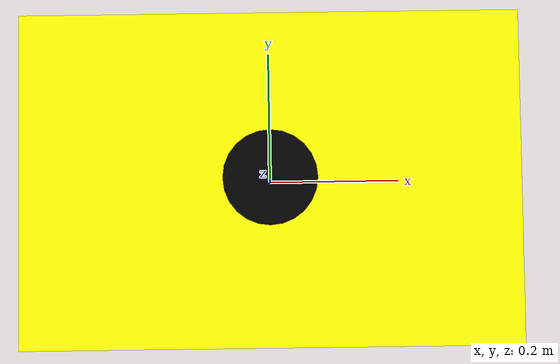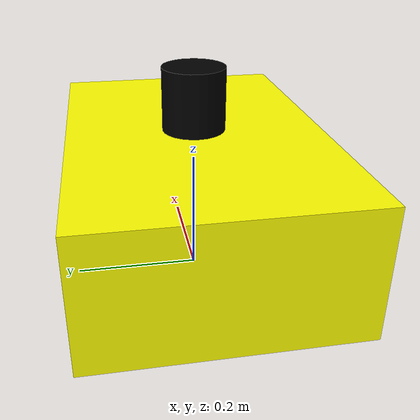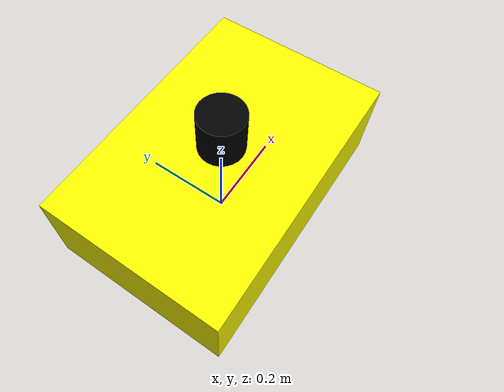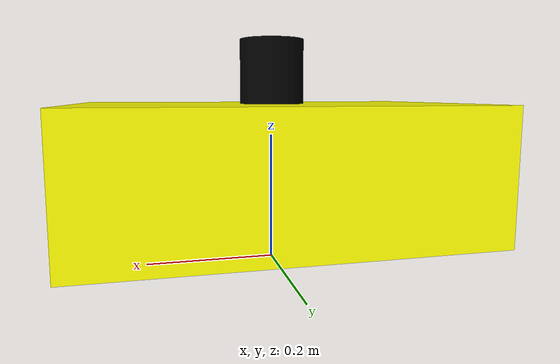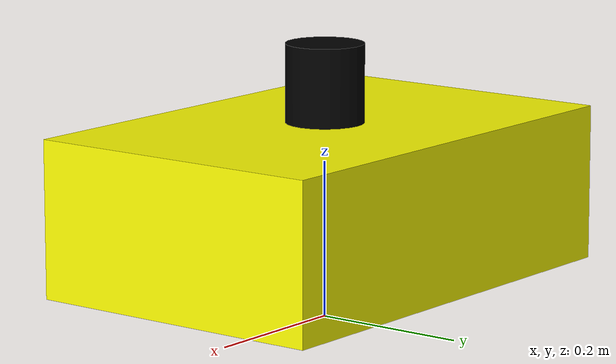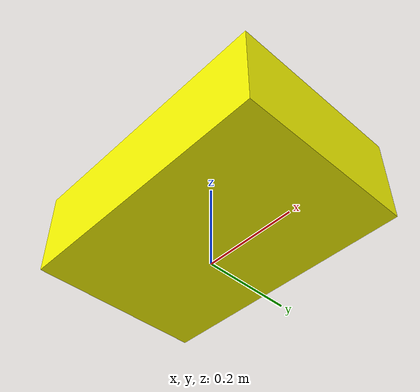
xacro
<?xml version="1.0"?>
<robot name="cavex_robot" xmlns:xacro="http://ros.org/wiki/xacro">
  <link name="base_footprint"/>
  <joint name="base_joint" type="fixed">
    <parent link="base_footprint"/>
    <child link="base_link"/>
    <origin xyz="0 0 0.15" rpy="0 0 0"/>
  </joint>

  <link name="base_link">
    <visual>
      <geometry><box size="0.6 0.4 0.2"/></geometry>
      <material name="yellow"><color rgba="1 1 0 1"/></material>
    </visual>
    <collision>
      <geometry><box size="0.6 0.4 0.2"/></geometry>
    </collision>
    <inertial>
      <mass value="15.0"/>
      <inertia ixx="0.1" ixy="0" ixz="0" iyy="0.1" iyz="0" izz="0.1"/>
    </inertial>
  </link>

  <!-- Lidar -->
  <link name="lidar_link">
    <visual>
      <geometry><cylinder radius="0.05" length="0.1"/></geometry>
      <material name="black"><color rgba="0 0 0 1"/></material>
    </visual>
  </link>
  <joint name="lidar_joint" type="fixed">
    <parent link="base_link"/>
    <child link="lidar_link"/>
    <origin xyz="0 0 0.15" rpy="0 0 0"/>
  </joint>

  <!-- Camera -->
  <link name="camera_link"/>
  <joint name="camera_joint" type="fixed">
    <parent link="base_link"/>
    <child link="camera_link"/>
    <origin xyz="0.3 0 0" rpy="0 0 0"/>
  </joint>

  <gazebo reference="lidar_link">
    <sensor type="gpu_lidar" name="lidar_sensor">
      <pose>0 0 0 0 0 0</pose>
      <visualize>false</visualize>
      <update_rate>10</update_rate>
      <topic>lidar/scan</topic>
      <gz_frame_id>lidar_link</gz_frame_id>
      <ray>
        <scan>
          <horizontal><samples>360</samples><resolution>1</resolution><min_angle>-3.14</min_angle><max_angle>3.14</max_angle></horizontal>
        </scan>
        <range><min>0.3</min><max>12.0</max></range>
      </ray>
    </sensor>
  </gazebo>

  <gazebo reference="camera_link">
    <sensor type="camera" name="camera_sensor">
      <update_rate>30.0</update_rate>
      <topic>camera/color</topic>
      <gz_frame_id>camera_link</gz_frame_id>
      <camera>
        <horizontal_fov>1.3962634</horizontal_fov>
        <image><width>800</width><height>800</height><format>R8G8B8</format></image>
        <clip><near>0.02</near><far>300</far></clip>
      </camera>
    </sensor>
  </gazebo>

  <gazebo reference="base_link">
    <sensor type="imu" name="imu_sensor">
      <update_rate>50</update_rate>
      <topic>imu</topic>
      <gz_frame_id>base_link</gz_frame_id>
    </sensor>
  </gazebo>

  <gazebo>
    <plugin filename="gz-sim-velocity-control-system" name="gz::sim::systems::VelocityControl">
      <topic>cmd_vel</topic>
    </plugin>
    <plugin filename="gz-sim-odometry-publisher-system" name="gz::sim::systems::OdometryPublisher">
      <odom_frame>odom</odom_frame>
      <robot_base_frame>base_footprint</robot_base_frame>
      <dimensions>2</dimensions>
    </plugin>
  </gazebo>
</robot>
